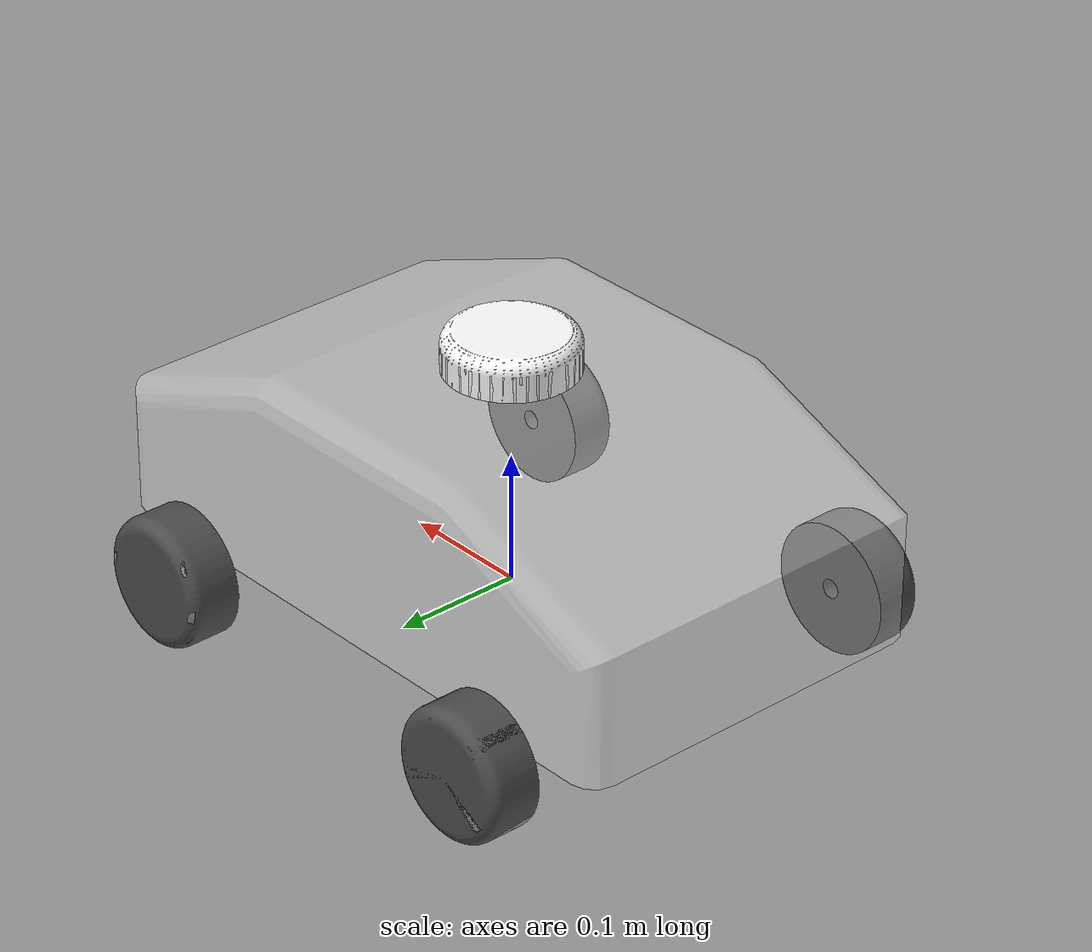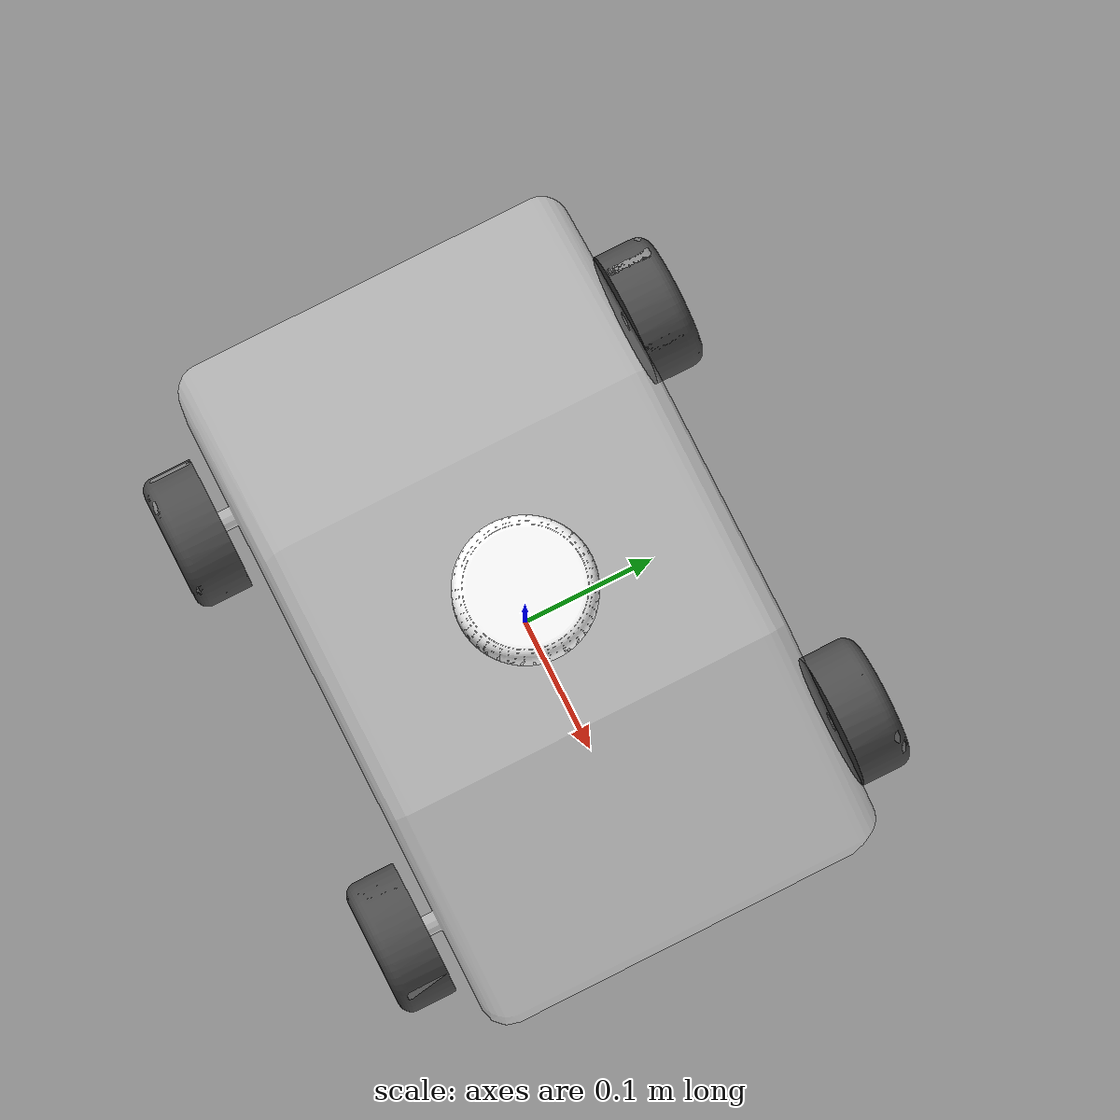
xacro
<robot
  name="new_robot">
  <link
    name="base_link">
    <inertial>
      <origin
        xyz="-3.6212E-18 -7.0088E-18 0.080606"
        rpy="0 0 0" />
      <mass
        value="20" />
      <inertia
        ixx="0.5403"
        ixy="-8.1866E-07"
        ixz="1.3633E-16"
        iyy="1.158"
        iyz="-2.6358E-17"
        izz="1.4784" />
    </inertial>
    <visual>
      <origin
        xyz="0 0 0"
        rpy="0 0 0" />
      <geometry>
        <mesh
          filename="file:///home/jay/robot_ws/install/new_robot/share/new_robot/meshes/base_link.STL" />
      </geometry>
      <material
        name="">
        <color
          rgba="1 1 1 0.35" />
      </material>
    </visual>
    <collision>
      <origin xyz="0 0 0.08" rpy="0 0 0" />
      <geometry>
        <box size="0.20 0.28 0.08" />
      </geometry>
    </collision>
  </link>
  <link
    name="frw_link">
    <inertial>
      <origin
        xyz="0 -0.019741 5.7641E-19"
        rpy="0 0 0" />
      <mass
        value="0.37917" />
      <inertia
        ixx="0.00028454"
        ixy="3.3158E-20"
        ixz="-2.4767E-20"
        iyy="0.00047097"
        iyz="-5.2804E-21"
        izz="0.00028454" />
    </inertial>
    <visual>
      <origin
        xyz="0 0 0"
        rpy="0 0 0" />
      <geometry>
        <mesh
          filename="file:///home/jay/robot_ws/install/new_robot/share/new_robot/meshes/frw_link.STL" />
      </geometry>
      <material
        name="">
        <color
          rgba="0.29804 0.29804 0.29804 1" />
      </material>
    </visual>
    <collision>
      <origin xyz="0 -0.02 0" rpy="1.5708 0 0" />
      <geometry>
        <cylinder radius="0.05" length="0.04" />
      </geometry>
   </collision>
  </link>
  <joint
     name="frw_joint"
     type="continuous">
   <origin
       xyz="0.16 -0.16 0"
       rpy="0 0 0" />
   <parent
       link="base_link" />
   <child
       link="frw_link" />
   <axis
       xyz="0 1 0" />

  <limit
      effort="100"
      velocity="20"/>
  </joint>
  <link
    name="flw_link">
    <inertial>
      <origin
        xyz="0 0.019741 -1.6181E-19"
        rpy="0 0 0" />
      <mass
        value="0.37917" />
      <inertia
        ixx="0.00028454"
        ixy="2.078E-20"
        ixz="1.5946E-20"
        iyy="0.00047097"
        iyz="-4.4491E-21"
        izz="0.00028454" />
    </inertial>
    <visual>
      <origin
        xyz="0 0 0"
        rpy="0 0 0" />
      <geometry>
        <mesh
          filename="file:///home/jay/robot_ws/install/new_robot/share/new_robot/meshes/flw_link.STL" />
      </geometry>
      <material
        name="">
        <color
          rgba="0.29804 0.29804 0.29804 1" />
      </material>
    </visual>
    <collision>
      <origin xyz="0 0.02 0" rpy="1.5708 0 0" />
      <geometry>
        <cylinder radius="0.05" length="0.04" />
      </geometry>
   </collision>
  </link>
  <joint
    name="flw_joint"
    type="continuous">
    <origin
      xyz="0.16 0.16 0"
      rpy="0 0 0" />
    <parent
      link="base_link" />
    <child
      link="flw_link" />
    <axis
      xyz="0 1 0" />

    <limit
       effort="100"
       velocity="20"/>
  </joint>
  <link
    name="rrw_link">
    <inertial>
      <origin
        xyz="0 -0.019741 1.1532E-19"
        rpy="0 0 0" />
      <mass
        value="0.37917" />
      <inertia
        ixx="0.00028454"
        ixy="3.4599E-20"
        ixz="3.8161E-23"
        iyy="0.00047097"
        iyz="1.0201E-21"
        izz="0.00028454" />
    </inertial>
    <visual>
      <origin
        xyz="0 0 0"
        rpy="0 0 0" />
      <geometry>
        <mesh
          filename="file:///home/jay/robot_ws/install/new_robot/share/new_robot/meshes/rrw_link.STL" />
      </geometry>
      <material
        name="">
        <color
          rgba="0.29804 0.29804 0.29804 1" />
      </material>
    </visual>
    <!-- rrw_link -->
    <collision>
      <origin xyz="0 -0.02 0" rpy="1.5708 0 0" />
      <geometry>
        <cylinder radius="0.05" length="0.04" />
      </geometry>
   </collision>
  </link>
  <joint
    name="rrw_joint"
    type="continuous">
    <origin
      xyz="-0.16 -0.16 0"
      rpy="0 0 0" />
    <parent
      link="base_link" />
    <child
      link="rrw_link" />
    <axis
      xyz="0 1 0" />

    <limit
       effort="100"
       velocity="20"/>
  </joint>
  <link
    name="rlw_link">
    <inertial>
      <origin
        xyz="0 0.019741 1.5438E-18"
        rpy="0 0 0" />
      <mass
        value="0.37917" />
      <inertia
        ixx="0.00028454"
        ixy="4.9641E-20"
        ixz="4.5818E-20"
        iyy="0.00047097"
        iyz="9.2056E-21"
        izz="0.00028454" />
    </inertial>
    <visual>
      <origin
        xyz="0 0 0"
        rpy="0 0 0" />
      <geometry>
        <mesh
          filename="file:///home/jay/robot_ws/install/new_robot/share/new_robot/meshes/rlw_link.STL" />
      </geometry>
      <material
        name="">
        <color
          rgba="0.29804 0.29804 0.29804 1" />
      </material>
    </visual>
   <!-- rlw_link -->
   <collision>
     <origin xyz="0 0.02 0" rpy="1.5708 0 0" />
     <geometry>
       <cylinder radius="0.05" length="0.04" />
     </geometry>
   </collision>
  </link>
  <joint
    name="rlw_joint"
    type="continuous">
    <origin
      xyz="-0.16 0.16 0"
      rpy="0 0 0" />
    <parent
      link="base_link" />
    <child
      link="rlw_link" />
    <axis
      xyz="0 1 0" />

    <limit
       effort="100"
       velocity="20"/>
  </joint>
  <link
    name="lidar_link">
    <inertial>
      <origin
        xyz="0 0 0"
        rpy="0 0 0.5" />
      <mass
        value="0" />
      <inertia
        ixx="0"
        ixy="0"
        ixz="0"
        iyy="0"
        iyz="0"
        izz="0" />
    </inertial>
    <visual>
      <origin
        xyz="0 0 0"
        rpy="0 0 0" />
      <geometry>
        <mesh
          filename="file:///home/jay/robot_ws/install/new_robot/share/new_robot/meshes/lidar_link.STL" />
      </geometry>
      <material
        name="">
        <color
          rgba="1 1 1 1" />
      </material>
    </visual>
    <collision>
      <origin
        xyz="0 0 0"
        rpy="0 0 0" />
      <geometry>
        <mesh
          filename="file:///home/jay/robot_ws/install/new_robot/share/new_robot/meshes/lidar_link.STL" />
      </geometry>
    </collision>
  </link>
<!-- LiDAR Joint -->

<joint
    name="lidar_joint"
    type="fixed">

    <origin
        xyz="0 0 0.17098"
        rpy="0 0 0"/>

    <parent link="base_link"/>
    <child link="lidar_link"/>

</joint>

<!-- IMU Link -->

<link name="imu_link">

    <inertial>

        <origin xyz="0 0 0" rpy="0 0 0"/>

        <mass value="0.05"/>

        <inertia
            ixx="0.0001"
            iyy="0.0001"
            izz="0.0001"
            ixy="0"
            ixz="0"
            iyz="0"/>

    </inertial>

</link>

<!-- IMU Joint -->

<joint
    name="imu_joint"
    type="fixed">

    <origin
        xyz="0 0 0.10"
        rpy="0 0 0"/>

    <parent link="base_link"/>
    <child link="imu_link"/>

</joint>
<!--  GAZEBO: WHEEL FRICTION  -->
<!--  Low lateral mu1 for skid-steer -->
<gazebo reference="frw_link">
  <mu1>0.3</mu1>          <!-- along fdir1 = axle: low, so the wheel can skid sideways -->
  <mu2>1.0</mu2>          <!-- rolling direction: high, for traction -->
  <fdir1>0 0 1</fdir1>    <!-- collision frame Z = cylinder axis = wheel axle -->
  <kp>500000</kp>
  <kd>50</kd>
</gazebo>

<gazebo reference="flw_link">
  <mu1>0.3</mu1>          <!-- along fdir1 = axle: low, so the wheel can skid sideways -->
  <mu2>1.0</mu2>          <!-- rolling direction: high, for traction -->
  <fdir1>0 0 1</fdir1>    <!-- collision frame Z = cylinder axis = wheel axle -->
  <kp>500000</kp>
  <kd>50</kd>
</gazebo>

<gazebo reference="rrw_link">
  <mu1>0.3</mu1>          <!-- along fdir1 = axle: low, so the wheel can skid sideways -->
  <mu2>1.0</mu2>          <!-- rolling direction: high, for traction -->
  <fdir1>0 0 1</fdir1>    <!-- collision frame Z = cylinder axis = wheel axle -->
  <kp>500000</kp>
  <kd>50</kd>
</gazebo>

<gazebo reference="rlw_link">
  <mu1>0.3</mu1>          <!-- along fdir1 = axle: low, so the wheel can skid sideways -->
  <mu2>1.0</mu2>          <!-- rolling direction: high, for traction -->
  <fdir1>0 0 1</fdir1>    <!-- collision frame Z = cylinder axis = wheel axle -->
  <kp>500000</kp>
  <kd>50</kd>
</gazebo>

<gazebo reference="imu_link">

  <sensor name="imu_sensor" type="imu">

    <always_on>true</always_on>
    <update_rate>100</update_rate>
    <visualize>true</visualize>

    <imu>
      <angular_velocity>
        <x>
          <noise type="gaussian">
            <mean>0.0</mean>
            <stddev>0.0</stddev>
          </noise>
        </x>
        <y>
          <noise type="gaussian">
            <mean>0.0</mean>
            <stddev>0.0</stddev>
          </noise>
        </y>
        <z>
          <noise type="gaussian">
            <mean>0.0</mean>
            <stddev>0.0</stddev>
          </noise>
        </z>
      </angular_velocity>
      <linear_acceleration>
        <x>
          <noise type="gaussian">
            <mean>0.0</mean>
            <stddev>0.0</stddev>
          </noise>
        </x>
        <y>
          <noise type="gaussian">
            <mean>0.0</mean>
            <stddev>0.0</stddev>
          </noise>
        </y>
        <z>
          <noise type="gaussian">
            <mean>0.0</mean>
            <stddev>0.0</stddev>
          </noise>
        </z>
      </linear_acceleration>
    </imu>

    <plugin
        name="imu_plugin"
        filename="libgazebo_ros_imu_sensor.so">

      <ros>
        <remapping>~/out:=imu/data</remapping>
      </ros>

      <frame_name>imu_link</frame_name>

    </plugin>

  </sensor>

</gazebo>

<gazebo reference="lidar_link">
  <sensor name="lidar" type="ray">

    <always_on>true</always_on>
    <visualize>true</visualize>
    <update_rate>10</update_rate>

    <ray>

      <scan>

        <horizontal>
          <samples>720</samples>
          <resolution>1</resolution>
          <min_angle>-3.14159</min_angle>
          <max_angle>3.14159</max_angle>
        </horizontal>

      </scan>

      <range>
        <min>0.12</min>
        <max>12.0</max>
        <resolution>0.01</resolution>
      </range>

      <noise>
        <type>gaussian</type>
        <mean>0.0</mean>
        <stddev>0.01</stddev>
      </noise>

    </ray>

    <plugin
        name="gazebo_ros_laser"
        filename="libgazebo_ros_ray_sensor.so">

      <ros>
        <remapping>~/out:=scan</remapping>
      </ros>

      <output_type>sensor_msgs/LaserScan</output_type>

      <frame_name>lidar_link</frame_name>

    </plugin>

  </sensor>

</gazebo>

<!--  GAZEBO: 4WD SKID-STEER DRIVE    -->
<!--  odom TF disabled (EKF handles)  -->
<gazebo>
  <plugin name="skid_steer_drive" filename="libgazebo_ros_diff_drive.so">
    <ros>
      <namespace>/</namespace>
    </ros>

    <num_wheel_pairs>2</num_wheel_pairs>

    <left_joint>flw_joint</left_joint>
    <right_joint>frw_joint</right_joint>

    <left_joint>rlw_joint</left_joint>
    <right_joint>rrw_joint</right_joint>

    <wheel_separation>0.36</wheel_separation>
    <wheel_separation>0.36</wheel_separation>

    <wheel_diameter>0.10</wheel_diameter>
    <wheel_diameter>0.10</wheel_diameter>

    <max_wheel_torque>500</max_wheel_torque>
    <max_wheel_acceleration>1.0</max_wheel_acceleration>

    <command_topic>cmd_vel</command_topic>
    <publish_odom>true</publish_odom>
    <publish_odom_tf>false</publish_odom_tf>
    <publish_wheel_tf>true</publish_wheel_tf>
    <odometry_topic>odom</odometry_topic>
    <odometry_frame>odom</odometry_frame>
    <robot_base_frame>base_link</robot_base_frame>
  </plugin>
</gazebo>
</robot>
